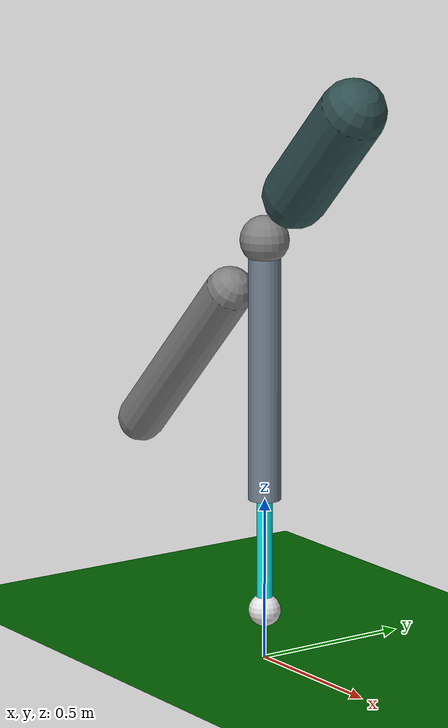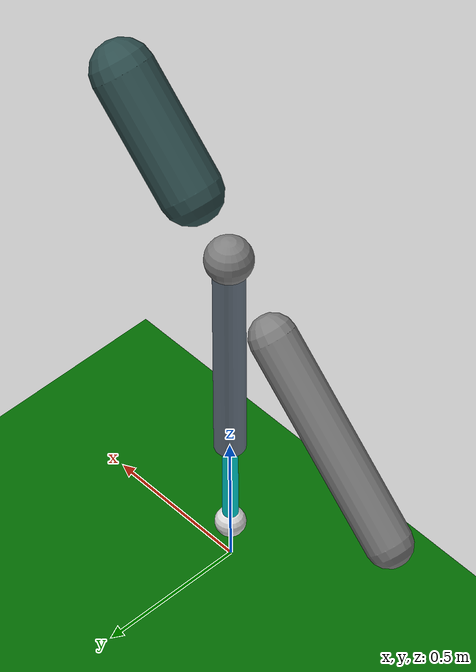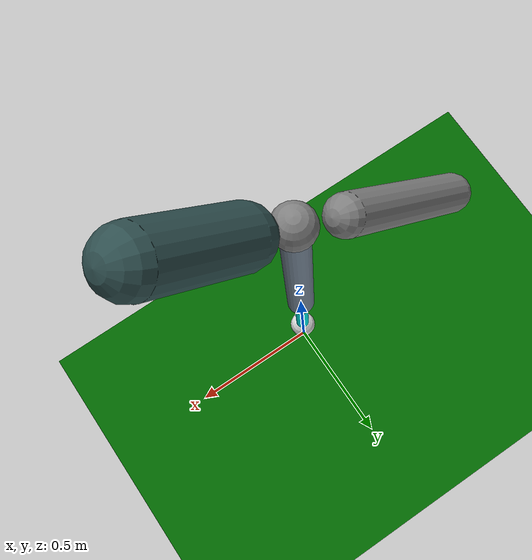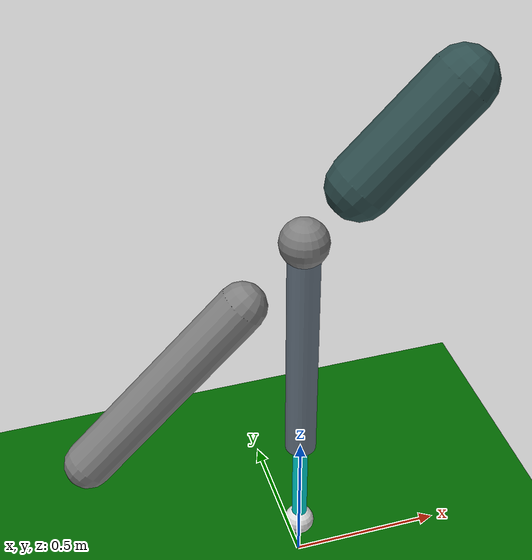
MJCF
<mujoco model="Kangaroo">
  <compiler angle="degree" inertiafromgeom="true"/>
  <option timestep="0.001" integrator="RK4"/>
  <visual>
    <map znear="0.02"/>
  </visual>
  <worldbody>
    <light cutoff="100" diffuse="1 1 1" dir="0 0 -1.3" directional="true" exponent="1" pos="0 0 1.3" specular=".1 .1 .1"/>
    <geom conaffinity="1" condim="3" pos="0 0 0" size="40 1 0.125" type="plane" rgba="0 0.4 0 1" friction="1.5 1 1"/>
    <body name="torso" pos="0 0 1.5"> <!-- torso -->
      <camera name="track" mode="trackcom" pos="0 3 -0.25" xyaxes="-1 0 0 0 0 -1"/> <!-- Adjusted for flipping -->
      <joint armature="0" axis="-1 0 0" damping="0" limited="false" name="x" pos="0 0 0" stiffness="0" type="slide"/> <!-- Flipped axis -->
      <joint armature="0" axis="0 0 1" damping="0" limited="false" name="z" pos="0 0 0" stiffness="0" type="slide"/> <!-- No change -->
      <joint armature="0" axis="0 -1 0" damping="0" limited="false" name="y" pos="0 0 0" stiffness="0" type="hinge"/> <!-- Flipped axis -->
      <geom type="capsule" pos="0.3 0 0.1" axisangle="0 -1 0 -45" size="0.1 0.2" rgba="0.184 0.31 0.31 1" mass="5"/> <!-- Flipped position -->
      <geom type="sphere" size="0.075" pos="0 0 -0.2" rgba="0.5 0.5 0.5 1" mass="0"/> <!-- No change -->
      <body name="tail" pos="-.15 0 -0.35"> <!-- tail -->
        <joint axis="0 -1 0" name="tail_joint" range="-90 90" type="hinge"/> <!-- Flipped axis -->
        <geom type="capsule" axisangle="0 -1 0 -45" size="0.075 0.35" pos="-0.283 0 -0.283" rgba="0.5 0.5 0.5 1" mass="4"/> <!-- Corrected orientation -->
      </body> <!-- tail end -->
      <body name="leg" pos="0 0 -0.2"> <!-- leg -->
        <joint axis="0 -1 0" name="leg_joint" range="-90 90" type="hinge"/> <!-- Flipped axis -->
        <geom size="0.05 0.4" pos="0 0 -0.4" type="cylinder" mass="1" rgba="0.44 0.5 0.56 1"/>
        <body name="foot" pos="0 0 -0.75"> <!-- foot -->
          <joint axis="0 0 1" name="foot_joint" springref="0" springdamper="1 0.5" range="-0.15 0.15" pos="0 0 0" type="slide"/> <!-- Flipped axis -->
          <geom size="0.025 0.4" pos="0 0 0" type="cylinder" mass="0.1" rgba="0 0.9 0.9 1"/>
          <geom size="0.05" pos="0 0 -0.4" mass="0.1" rgba="0.9 0.9 0.9 1" friction="2 1 1"/>
        </body> <!-- foot end -->
      </body> <!-- leg end -->
    </body> <!-- torso end -->
  </worldbody>
  <actuator>
    <general ctrllimited="true" ctrlrange="-1.0 1.0" gear="20.0" joint="leg_joint" gainprm="1"/>
    <general ctrllimited="true" ctrlrange="-1.0 1.0" gear="300.0" joint="foot_joint" gainprm="1"/>
    <general ctrllimited="true" ctrlrange="-1.0 1.0" gear="20.0" joint="tail_joint" gainprm="1"/>
  </actuator>
</mujoco>
